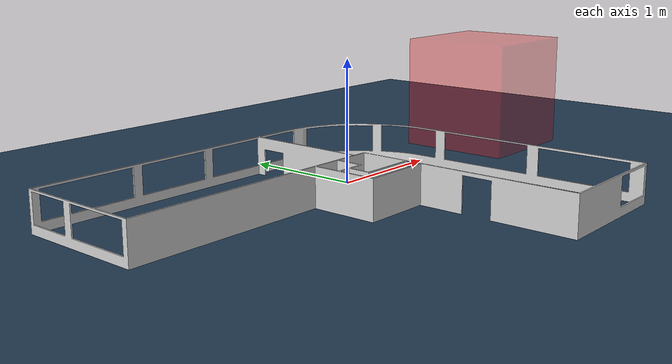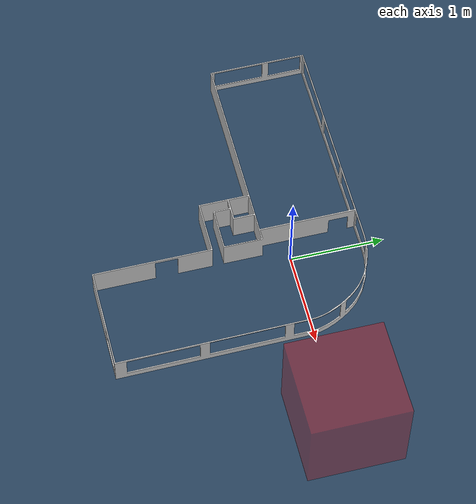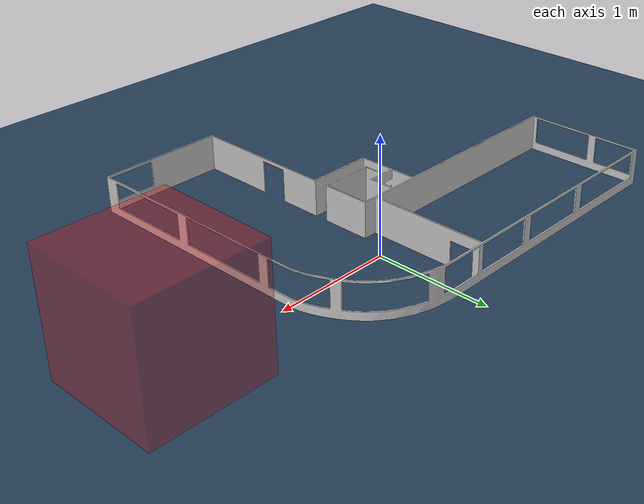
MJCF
<mujoco model="body1_test">
  <compiler angle="radian" meshdir="3d escritorio/body1_structure/"/>

  <visual>
    <headlight diffuse="0.6 0.6 0.6" ambient="0.3 0.3 0.3" specular="0 0 0"/>
    <rgba haze="0.15 0.25 0.35 1"/>
    <global azimuth="-130" elevation="-20"/>
  </visual>

  <default>
    <default class="visual">
      <geom group="2" type="mesh" contype="0" conaffinity="0"/>
    </default>
    <default class="collision">
      <geom group="3" type="mesh"/>
    </default>
  </default>

  <asset>
    <texture type="skybox" builtin="gradient" rgb1="0.3 0.5 0.7" rgb2="0 0 0" width="512" height="3072"/>
    <texture type="2d" name="groundplane" builtin="checker" mark="edge" rgb1="0.2 0.3 0.4" rgb2="0.1 0.2 0.3"
      markrgb="0.8 0.8 0.8" width="300" height="300"/>
    <material name="groundplane" texture="groundplane" texuniform="true" texrepeat="5 5" reflectance="0.2"/>
    <material name="structure" rgba="0.8 0.8 0.8 1" specular="0.1"/>

    <!-- Body1 mesh -->
    <mesh file="body1_structure.obj" scale="0.001 0.001 0.001"/>
  </asset>

  <worldbody>
    <!-- Luz adicional -->
    <light pos="0 0 3" dir="0 0 -1" directional="true"/>

    <!-- Chão -->
    <geom name="floor" size="10 10 0.01" type="plane" material="groundplane"/>

    <!-- Body1 (possível plataforma/piso elevado) -->
    <body name="body1" pos="-0.573 -0.700 0">
      <geom mesh="body1_structure" class="visual" material="structure"/>
    </body>

    <!-- Cubo de referência para escala (1m x 1m x 1m) -->
    <body name="reference_cube" pos="2 0 0.5">
      <geom type="box" size="0.5 0.5 0.5" rgba="1 0 0 0.3"/>
    </body>
  </worldbody>

  <!-- Câmera personalizada -->
  <statistic center="0 0 0.5" extent="3"/>
</mujoco>
